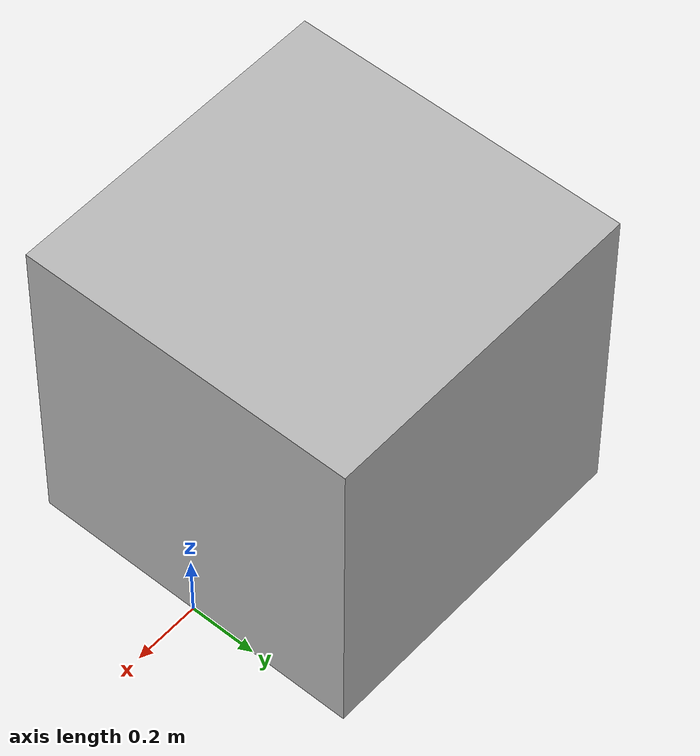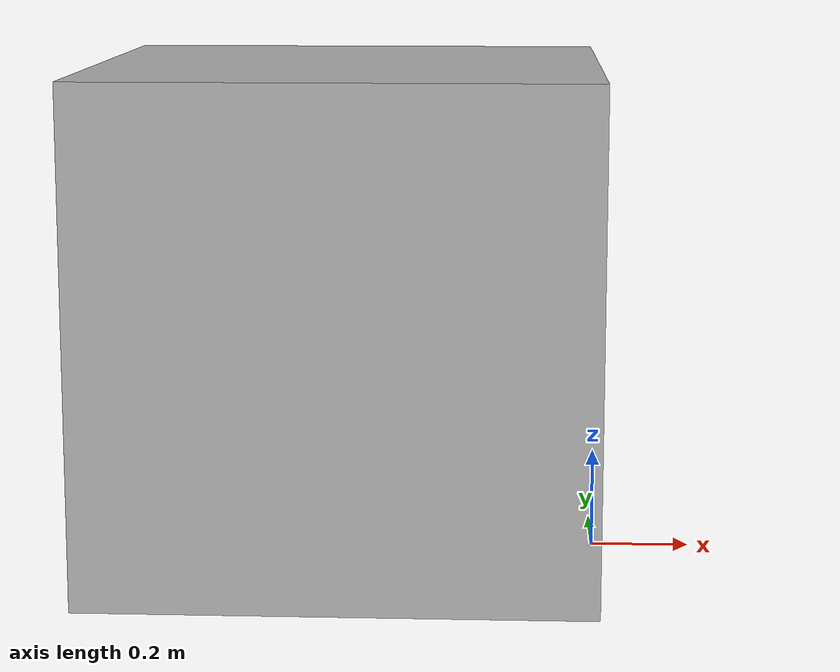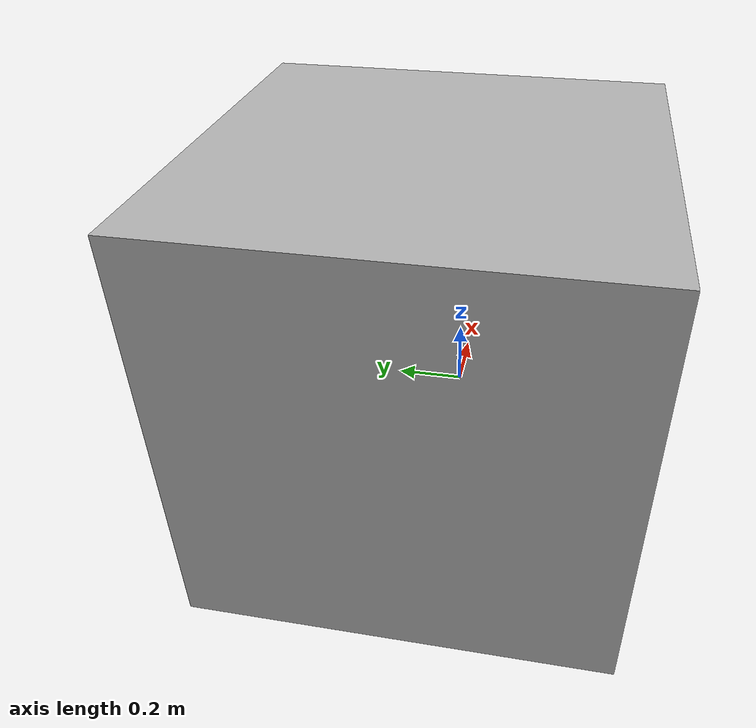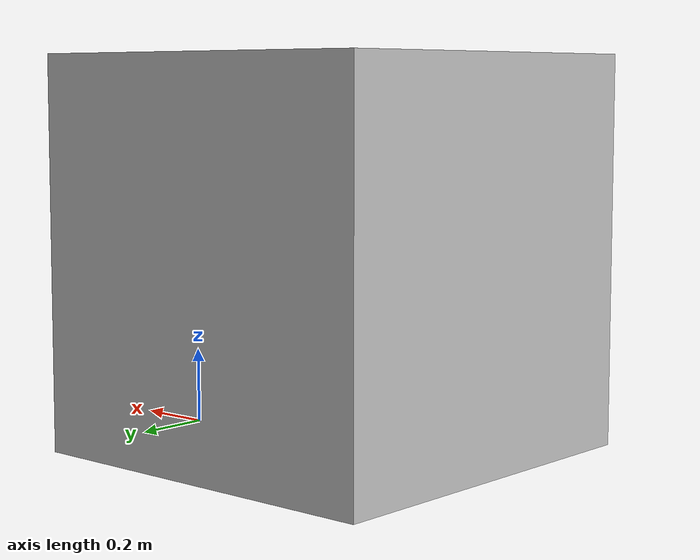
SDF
<?xml version='1.0'?>
<sdf version="1.5">
  <model name="apriltag0">
    <pose> 0 0 0.5 0 0 0</pose>
    <static>true</static>
    <link name="link">
      <collision name="collision">
	      <pose>-0.5 0 0 0 0 0</pose>
        <geometry>
          <box>
            <size>1 1 1</size>
          </box>
        </geometry>
      </collision>
      <visual name='visual'>
        <pose>-0.5 0 0 0 0 0</pose>
        <geometry>
            <mesh>
              <uri>model://apriltag_0/meshes/aptag_0.dae</uri>
            </mesh>
        </geometry>
      </visual>
    </link>
  </model>
</sdf>
